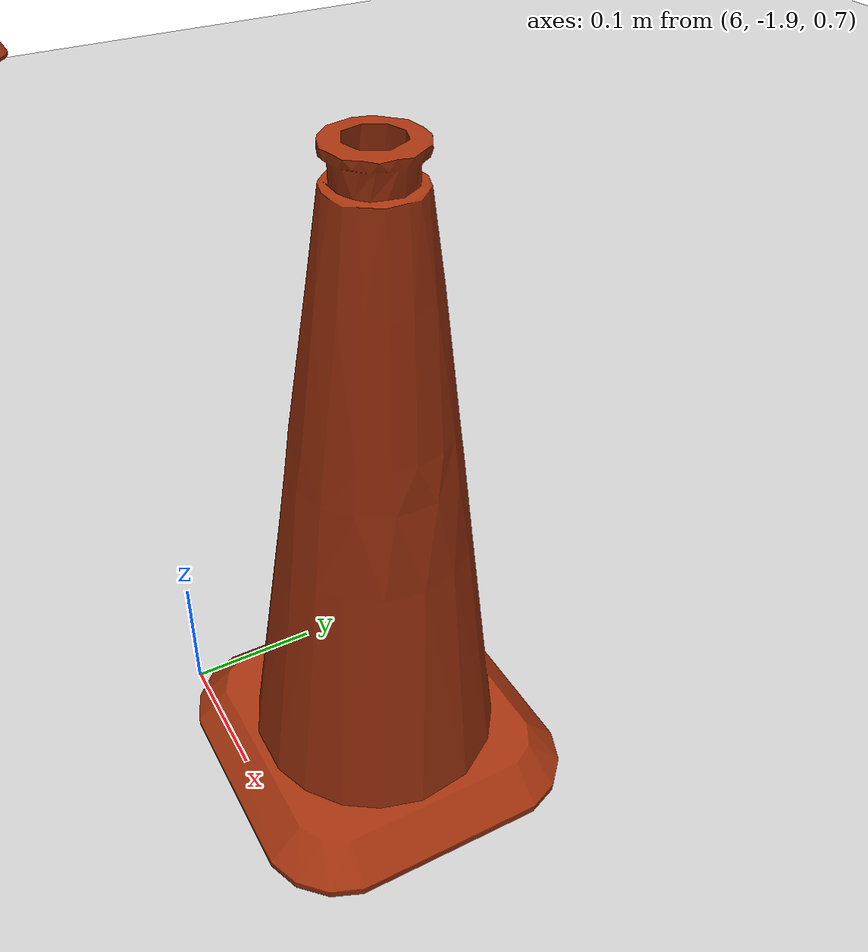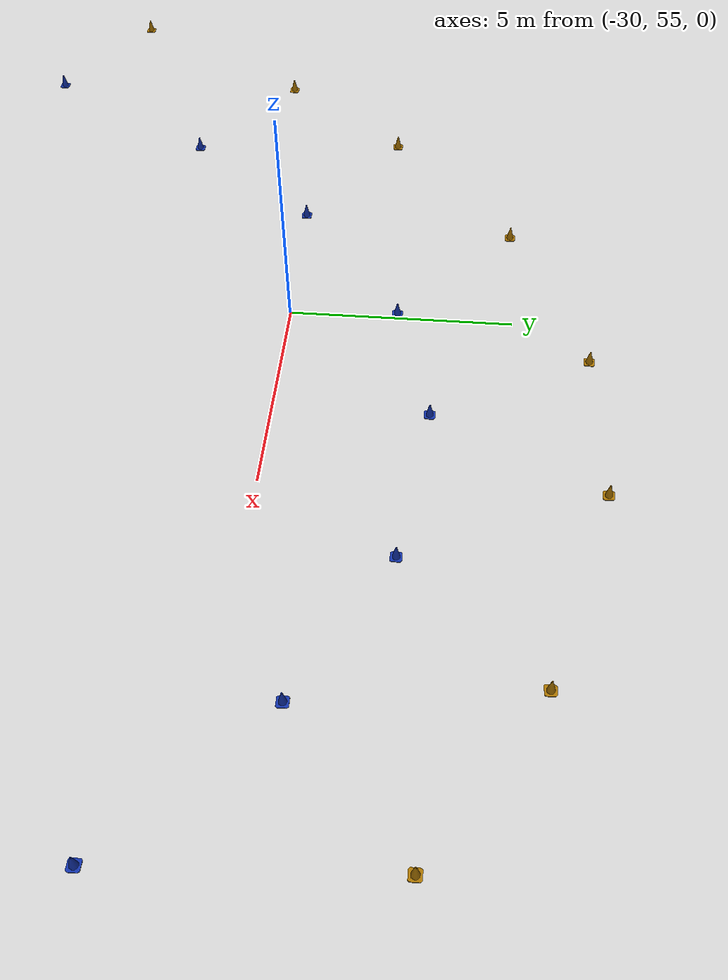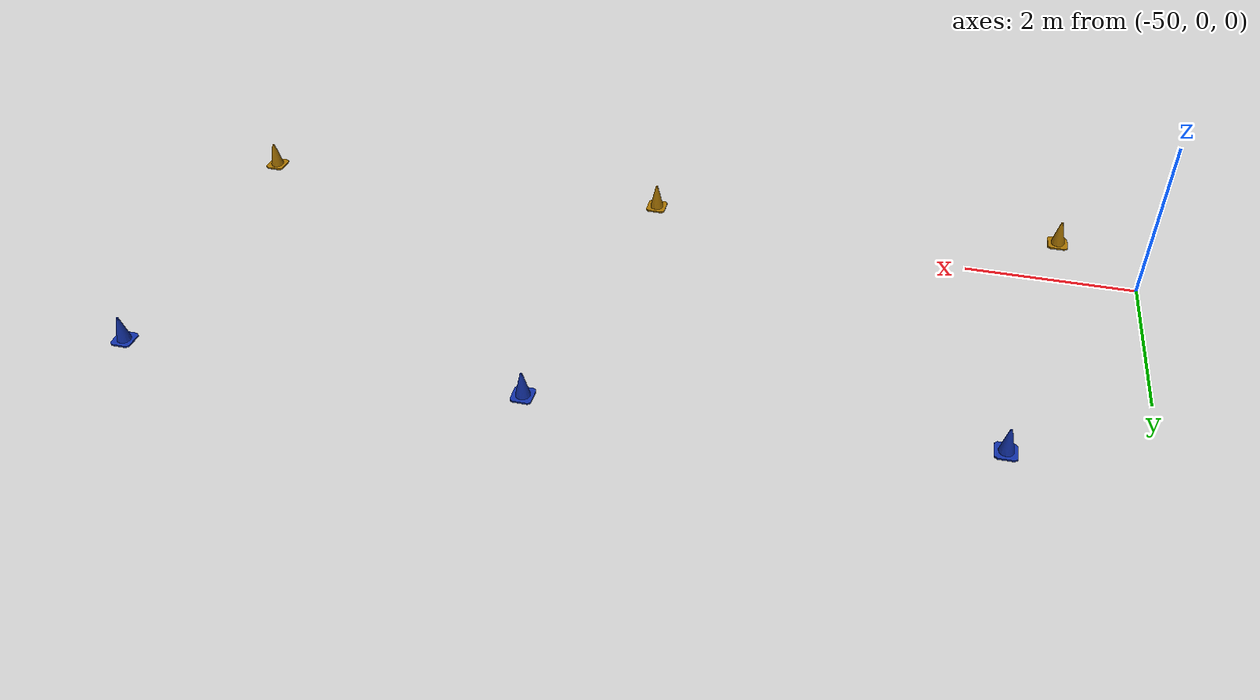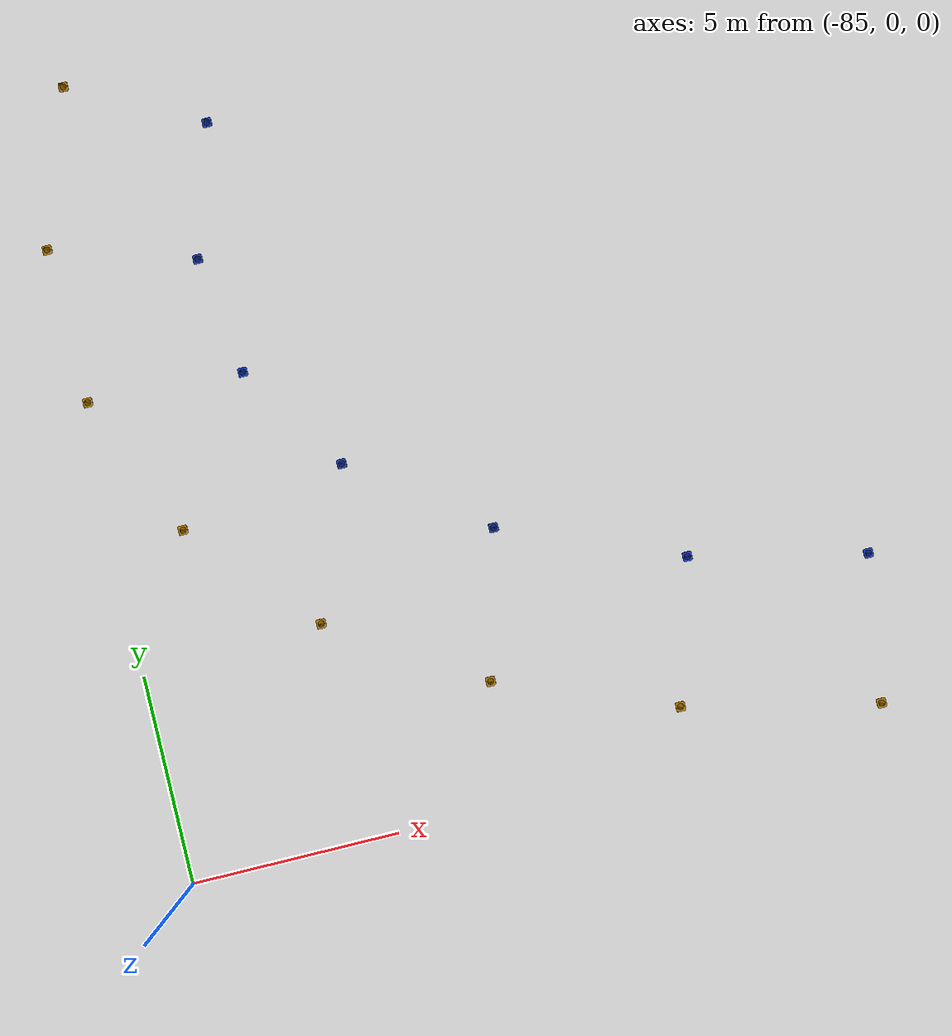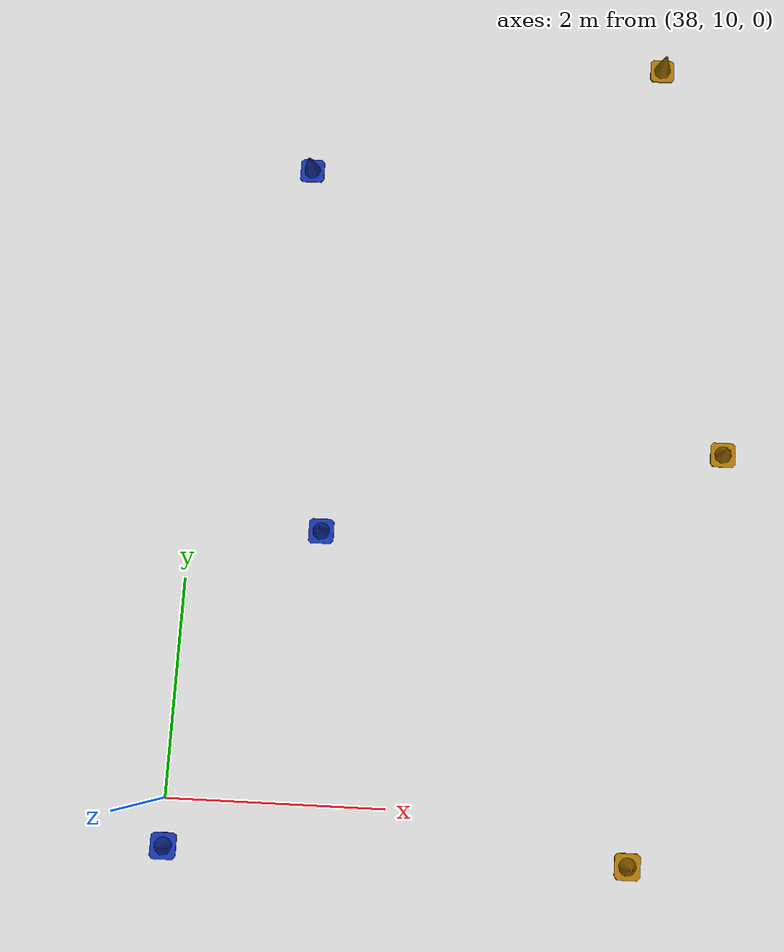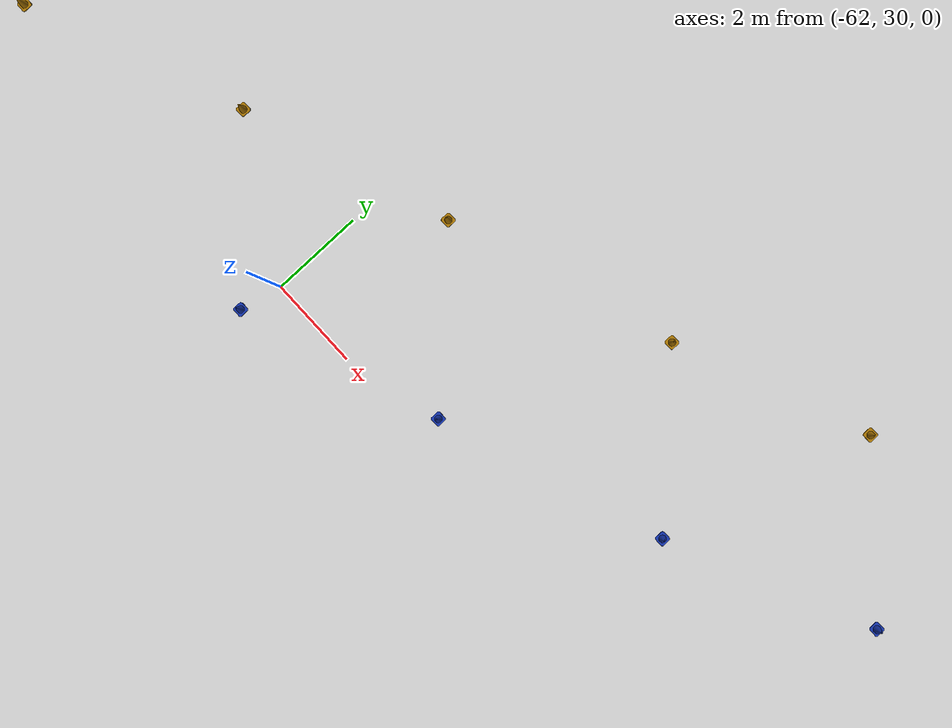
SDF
<sdf version='1.6'>
  <world name='BM_long_straight'>
    <gui fullscreen='0'>
      <camera name='user_camera'>
        <pose frame=''>-40 40 20 0 0.667643 -1</pose>
        <view_controller>orbit</view_controller>
        <projection_type>perspective</projection_type>
      </camera>
    </gui>

    <!-- WORLD SETTINGS -->
    <scene>
      <ambient>1.0 1.0 1.0 1.0</ambient>
      <shadows>false</shadows>
    </scene>

    <spherical_coordinates>
      <heading_deg>180</heading_deg>

      <!-- Appleton Tower coordinates -->
      <latitude_deg>-27.690733</latitude_deg>
      <longitude_deg>152.656715</longitude_deg>
    </spherical_coordinates>

    <light name='sun' type='directional'>
      <cast_shadows>1</cast_shadows>
      <pose frame=''>0 0 10 0 -0 0</pose>
      <diffuse>0.8 0.8 0.8 1</diffuse>
      <specular>0.1 0.1 0.1 1</specular>
      <attenuation>
        <range>1000</range>
        <constant>0.9</constant>
        <linear>0.01</linear>
        <quadratic>0.001</quadratic>
      </attenuation>
      <direction>-0.5 0.5 -1</direction>
    </light>

    <!-- MODELS -->
    <include>
      <uri>model://ground_plane</uri>
      <pose>0.0 0.0 0.0 0 0 0</pose>
    </include>

    <include>
      <uri>model://BM_long_straight</uri>
      <pose>0 0 0.5 0 0 0</pose>
    </include>

  </world>
</sdf>

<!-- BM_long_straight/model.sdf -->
<sdf version='1.6'>
  <model name='track'>

    <include>
      <pose>9.81 1.7 0.15 0 0 0</pose>
      <uri>model://blue_cone</uri>
      <name>blue_cone_0</name>

      <covariance x="0.01" y="0.01" xy="0.0"/>

    </include>

    <include>
      <pose>14.77 1.78 0.15 0 0 0</pose>
      <uri>model://blue_cone</uri>
      <name>blue_cone_1</name>

      <covariance x="0.01" y="0.01" xy="0.0"/>

    </include>

    <include>
      <pose>19.04 2.03 0.15 0 0 0</pose>
      <uri>model://blue_cone</uri>
      <name>blue_cone_2</name>

      <covariance x="0.01" y="0.01" xy="0.0"/>

    </include>

    <include>
      <pose>24.17 2.68 0.15 0 0 0</pose>
      <uri>model://blue_cone</uri>
      <name>blue_cone_3</name>

      <covariance x="0.01" y="0.01" xy="0.0"/>

    </include>

    <include>
      <pose>28.26 3.61 0.15 0 0 0</pose>
      <uri>model://blue_cone</uri>
      <name>blue_cone_4</name>

      <covariance x="0.01" y="0.01" xy="0.0"/>

    </include>

    <include>
      <pose>31.99 4.95 0.15 0 0 0</pose>
      <uri>model://blue_cone</uri>
      <name>blue_cone_5</name>

      <covariance x="0.01" y="0.01" xy="0.0"/>

    </include>

    <include>
      <pose>35.66 7.08 0.15 0 0 0</pose>
      <uri>model://blue_cone</uri>
      <name>blue_cone_6</name>

      <covariance x="0.01" y="0.01" xy="0.0"/>

    </include>

    <include>
      <pose>38.15 9.64 0.15 0 0 0</pose>
      <uri>model://blue_cone</uri>
      <name>blue_cone_7</name>

      <covariance x="0.01" y="0.01" xy="0.0"/>

    </include>

    <include>
      <pose>39.31 12.42 0.15 0 0 0</pose>
      <uri>model://blue_cone</uri>
      <name>blue_cone_8</name>

      <covariance x="0.01" y="0.01" xy="0.0"/>

    </include>

    <include>
      <pose>38.98 15.85 0.15 0 0 0</pose>
      <uri>model://blue_cone</uri>
      <name>blue_cone_9</name>

      <covariance x="0.01" y="0.01" xy="0.0"/>

    </include>

    <include>
      <pose>37.53 18.45 0.15 0 0 0</pose>
      <uri>model://blue_cone</uri>
      <name>blue_cone_10</name>

      <covariance x="0.01" y="0.01" xy="0.0"/>

    </include>

    <include>
      <pose>34.41 21.49 0.15 0 0 0</pose>
      <uri>model://blue_cone</uri>
      <name>blue_cone_11</name>

      <covariance x="0.01" y="0.01" xy="0.0"/>

    </include>

    <include>
      <pose>30.79 23.77 0.15 0 0 0</pose>
      <uri>model://blue_cone</uri>
      <name>blue_cone_12</name>

      <covariance x="0.01" y="0.01" xy="0.0"/>

    </include>

    <include>
      <pose>26.48 25.68 0.15 0 0 0</pose>
      <uri>model://blue_cone</uri>
      <name>blue_cone_13</name>

      <covariance x="0.01" y="0.01" xy="0.0"/>

    </include>

    <include>
      <pose>22.72 26.92 0.15 0 0 0</pose>
      <uri>model://blue_cone</uri>
      <name>blue_cone_14</name>

      <covariance x="0.01" y="0.01" xy="0.0"/>

    </include>

    <include>
      <pose>17.85 28.15 0.15 0 0 0</pose>
      <uri>model://blue_cone</uri>
      <name>blue_cone_15</name>

      <covariance x="0.01" y="0.01" xy="0.0"/>

    </include>

    <include>
      <pose>13.05 29.1 0.15 0 0 0</pose>
      <uri>model://blue_cone</uri>
      <name>blue_cone_16</name>

      <covariance x="0.01" y="0.01" xy="0.0"/>

    </include>

    <include>
      <pose>7.64 30.09 0.15 0 0 0</pose>
      <uri>model://blue_cone</uri>
      <name>blue_cone_17</name>

      <covariance x="0.01" y="0.01" xy="0.0"/>

    </include>

    <include>
      <pose>3.6 31.01 0.15 0 0 0</pose>
      <uri>model://blue_cone</uri>
      <name>blue_cone_18</name>

      <covariance x="0.01" y="0.01" xy="0.0"/>

    </include>

    <include>
      <pose>-0.64 32.53 0.15 0 0 0</pose>
      <uri>model://blue_cone</uri>
      <name>blue_cone_19</name>

      <covariance x="0.01" y="0.01" xy="0.0"/>

    </include>

    <include>
      <pose>-4.17 34.8 0.15 0 0 0</pose>
      <uri>model://blue_cone</uri>
      <name>blue_cone_20</name>

      <covariance x="0.01" y="0.01" xy="0.0"/>

    </include>

    <include>
      <pose>-6.99 37.83 0.15 0 0 0</pose>
      <uri>model://blue_cone</uri>
      <name>blue_cone_21</name>

      <covariance x="0.01" y="0.01" xy="0.0"/>

    </include>

    <include>
      <pose>-9.67 42.09 0.15 0 0 0</pose>
      <uri>model://blue_cone</uri>
      <name>blue_cone_22</name>

      <covariance x="0.01" y="0.01" xy="0.0"/>

    </include>

    <include>
      <pose>-11.85 46.07 0.15 0 0 0</pose>
      <uri>model://blue_cone</uri>
      <name>blue_cone_23</name>

      <covariance x="0.01" y="0.01" xy="0.0"/>

    </include>

    <include>
      <pose>-14.2 50.03 0.15 0 0 0</pose>
      <uri>model://blue_cone</uri>
      <name>blue_cone_24</name>

      <covariance x="0.01" y="0.01" xy="0.0"/>

    </include>

    <include>
      <pose>-16.86 53.57 0.15 0 0 0</pose>
      <uri>model://blue_cone</uri>
      <name>blue_cone_25</name>

      <covariance x="0.01" y="0.01" xy="0.0"/>

    </include>

    <include>
      <pose>-19.81 56.29 0.15 0 0 0</pose>
      <uri>model://blue_cone</uri>
      <name>blue_cone_26</name>

      <covariance x="0.01" y="0.01" xy="0.0"/>

    </include>

    <include>
      <pose>-22.89 57.93 0.15 0 0 0</pose>
      <uri>model://blue_cone</uri>
      <name>blue_cone_27</name>

      <covariance x="0.01" y="0.01" xy="0.0"/>

    </include>

    <include>
      <pose>-26.45 58.34 0.15 0 0 0</pose>
      <uri>model://blue_cone</uri>
      <name>blue_cone_28</name>

      <covariance x="0.01" y="0.01" xy="0.0"/>

    </include>

    <include>
      <pose>-29.41 57.47 0.15 0 0 0</pose>
      <uri>model://blue_cone</uri>
      <name>blue_cone_29</name>

      <covariance x="0.01" y="0.01" xy="0.0"/>

    </include>

    <include>
      <pose>-32.71 55.06 0.15 0 0 0</pose>
      <uri>model://blue_cone</uri>
      <name>blue_cone_30</name>

      <covariance x="0.01" y="0.01" xy="0.0"/>

    </include>

    <include>
      <pose>-35.25 52.02 0.15 0 0 0</pose>
      <uri>model://blue_cone</uri>
      <name>blue_cone_31</name>

      <covariance x="0.01" y="0.01" xy="0.0"/>

    </include>

    <include>
      <pose>-37.84 47.83 0.15 0 0 0</pose>
      <uri>model://blue_cone</uri>
      <name>blue_cone_32</name>

      <covariance x="0.01" y="0.01" xy="0.0"/>

    </include>

    <include>
      <pose>-40.22 43.48 0.15 0 0 0</pose>
      <uri>model://blue_cone</uri>
      <name>blue_cone_33</name>

      <covariance x="0.01" y="0.01" xy="0.0"/>

    </include>

    <include>
      <pose>-42.82 39.44 0.15 0 0 0</pose>
      <uri>model://blue_cone</uri>
      <name>blue_cone_34</name>

      <covariance x="0.01" y="0.01" xy="0.0"/>

    </include>

    <include>
      <pose>-45.59 36.48 0.15 0 0 0</pose>
      <uri>model://blue_cone</uri>
      <name>blue_cone_35</name>

      <covariance x="0.01" y="0.01" xy="0.0"/>

    </include>

    <include>
      <pose>-49.03 34.11 0.15 0 0 0</pose>
      <uri>model://blue_cone</uri>
      <name>blue_cone_36</name>

      <covariance x="0.01" y="0.01" xy="0.0"/>

    </include>

    <include>
      <pose>-53.12 32.25 0.15 0 0 0</pose>
      <uri>model://blue_cone</uri>
      <name>blue_cone_37</name>

      <covariance x="0.01" y="0.01" xy="0.0"/>

    </include>

    <include>
      <pose>-57.79 30.62 0.15 0 0 0</pose>
      <uri>model://blue_cone</uri>
      <name>blue_cone_38</name>

      <covariance x="0.01" y="0.01" xy="0.0"/>

    </include>

    <include>
      <pose>-62.0 29.22 0.15 0 0 0</pose>
      <uri>model://blue_cone</uri>
      <name>blue_cone_39</name>

      <covariance x="0.01" y="0.01" xy="0.0"/>

    </include>

    <include>
      <pose>-67.17 27.29 0.15 0 0 0</pose>
      <uri>model://blue_cone</uri>
      <name>blue_cone_40</name>

      <covariance x="0.01" y="0.01" xy="0.0"/>

    </include>

    <include>
      <pose>-71.31 25.35 0.15 0 0 0</pose>
      <uri>model://blue_cone</uri>
      <name>blue_cone_41</name>

      <covariance x="0.01" y="0.01" xy="0.0"/>

    </include>

    <include>
      <pose>-75.01 23.09 0.15 0 0 0</pose>
      <uri>model://blue_cone</uri>
      <name>blue_cone_42</name>

      <covariance x="0.01" y="0.01" xy="0.0"/>

    </include>

    <include>
      <pose>-78.01 20.56 0.15 0 0 0</pose>
      <uri>model://blue_cone</uri>
      <name>blue_cone_43</name>

      <covariance x="0.01" y="0.01" xy="0.0"/>

    </include>

    <include>
      <pose>-80.4 17.37 0.15 0 0 0</pose>
      <uri>model://blue_cone</uri>
      <name>blue_cone_44</name>

      <covariance x="0.01" y="0.01" xy="0.0"/>

    </include>

    <include>
      <pose>-81.36 14.27 0.15 0 0 0</pose>
      <uri>model://blue_cone</uri>
      <name>blue_cone_45</name>

      <covariance x="0.01" y="0.01" xy="0.0"/>

    </include>

    <include>
      <pose>-80.95 11.42 0.15 0 0 0</pose>
      <uri>model://blue_cone</uri>
      <name>blue_cone_46</name>

      <covariance x="0.01" y="0.01" xy="0.0"/>

    </include>

    <include>
      <pose>-79.2 8.78 0.15 0 0 0</pose>
      <uri>model://blue_cone</uri>
      <name>blue_cone_47</name>

      <covariance x="0.01" y="0.01" xy="0.0"/>

    </include>

    <include>
      <pose>-76.1 6.48 0.15 0 0 0</pose>
      <uri>model://blue_cone</uri>
      <name>blue_cone_48</name>

      <covariance x="0.01" y="0.01" xy="0.0"/>

    </include>

    <include>
      <pose>-71.86 4.75 0.15 0 0 0</pose>
      <uri>model://blue_cone</uri>
      <name>blue_cone_49</name>

      <covariance x="0.01" y="0.01" xy="0.0"/>

    </include>

    <include>
      <pose>-67.73 3.82 0.15 0 0 0</pose>
      <uri>model://blue_cone</uri>
      <name>blue_cone_50</name>

      <covariance x="0.01" y="0.01" xy="0.0"/>

    </include>

    <include>
      <pose>-63.29 3.33 0.15 0 0 0</pose>
      <uri>model://blue_cone</uri>
      <name>blue_cone_51</name>

      <covariance x="0.01" y="0.01" xy="0.0"/>

    </include>

    <include>
      <pose>-58.76 3.21 0.15 0 0 0</pose>
      <uri>model://blue_cone</uri>
      <name>blue_cone_52</name>

      <covariance x="0.01" y="0.01" xy="0.0"/>

    </include>

    <include>
      <pose>-53.43 3.38 0.15 0 0 0</pose>
      <uri>model://blue_cone</uri>
      <name>blue_cone_53</name>

      <covariance x="0.01" y="0.01" xy="0.0"/>

    </include>

    <include>
      <pose>-48.37 3.71 0.15 0 0 0</pose>
      <uri>model://blue_cone</uri>
      <name>blue_cone_54</name>

      <covariance x="0.01" y="0.01" xy="0.0"/>

    </include>

    <include>
      <pose>-43.66 3.99 0.15 0 0 0</pose>
      <uri>model://blue_cone</uri>
      <name>blue_cone_55</name>

      <covariance x="0.01" y="0.01" xy="0.0"/>

    </include>

    <include>
      <pose>-39.3 4.11 0.15 0 0 0</pose>
      <uri>model://blue_cone</uri>
      <name>blue_cone_56</name>

      <covariance x="0.01" y="0.01" xy="0.0"/>

    </include>

    <include>
      <pose>-33.91 3.89 0.15 0 0 0</pose>
      <uri>model://blue_cone</uri>
      <name>blue_cone_57</name>

      <covariance x="0.01" y="0.01" xy="0.0"/>

    </include>

    <include>
      <pose>-29.49 3.4 0.15 0 0 0</pose>
      <uri>model://blue_cone</uri>
      <name>blue_cone_58</name>

      <covariance x="0.01" y="0.01" xy="0.0"/>

    </include>

    <include>
      <pose>-24.61 2.72 0.15 0 0 0</pose>
      <uri>model://blue_cone</uri>
      <name>blue_cone_59</name>

      <covariance x="0.01" y="0.01" xy="0.0"/>

    </include>

    <include>
      <pose>-19.79 2.14 0.15 0 0 0</pose>
      <uri>model://blue_cone</uri>
      <name>blue_cone_60</name>

      <covariance x="0.01" y="0.01" xy="0.0"/>

    </include>

    <include>
      <pose>-14.93 1.79 0.15 0 0 0</pose>
      <uri>model://blue_cone</uri>
      <name>blue_cone_61</name>

      <covariance x="0.01" y="0.01" xy="0.0"/>

    </include>

    <include>
      <pose>-9.96 1.69 0.15 0 0 0</pose>
      <uri>model://blue_cone</uri>
      <name>blue_cone_62</name>

      <covariance x="0.01" y="0.01" xy="0.0"/>

    </include>

    <include>
      <pose>-5.45 1.72 0.15 0 0 0</pose>
      <uri>model://blue_cone</uri>
      <name>blue_cone_63</name>

      <covariance x="0.01" y="0.01" xy="0.0"/>

    </include>

    <include>
      <pose>-0.0 1.75 0.15 0 0 0</pose>
      <uri>model://blue_cone</uri>
      <name>blue_cone_64</name>

      <covariance x="0.01" y="0.01" xy="0.0"/>

    </include>

    <include>
      <pose>9.82 -1.8 0.15 0 0 0</pose>
      <uri>model://yellow_cone</uri>
      <name>yellow_cone_65</name>

      <covariance x="0.01" y="0.01" xy="0.0"/>

    </include>

    <include>
      <pose>14.89 -1.72 0.15 0 0 0</pose>
      <uri>model://yellow_cone</uri>
      <name>yellow_cone_66</name>

      <covariance x="0.01" y="0.01" xy="0.0"/>

    </include>

    <include>
      <pose>19.33 -1.46 0.15 0 0 0</pose>
      <uri>model://yellow_cone</uri>
      <name>yellow_cone_67</name>

      <covariance x="0.01" y="0.01" xy="0.0"/>

    </include>

    <include>
      <pose>23.87 -0.92 0.15 0 0 0</pose>
      <uri>model://yellow_cone</uri>
      <name>yellow_cone_68</name>

      <covariance x="0.01" y="0.01" xy="0.0"/>

    </include>

    <include>
      <pose>28.35 0.01 0.15 0 0 0</pose>
      <uri>model://yellow_cone</uri>
      <name>yellow_cone_69</name>

      <covariance x="0.01" y="0.01" xy="0.0"/>

    </include>

    <include>
      <pose>32.61 1.41 0.15 0 0 0</pose>
      <uri>model://yellow_cone</uri>
      <name>yellow_cone_70</name>

      <covariance x="0.01" y="0.01" xy="0.0"/>

    </include>

    <include>
      <pose>36.43 3.36 0.15 0 0 0</pose>
      <uri>model://yellow_cone</uri>
      <name>yellow_cone_71</name>

      <covariance x="0.01" y="0.01" xy="0.0"/>

    </include>

    <include>
      <pose>40.11 6.46 0.15 0 0 0</pose>
      <uri>model://yellow_cone</uri>
      <name>yellow_cone_72</name>

      <covariance x="0.01" y="0.01" xy="0.0"/>

    </include>

    <include>
      <pose>42.13 9.67 0.15 0 0 0</pose>
      <uri>model://yellow_cone</uri>
      <name>yellow_cone_73</name>

      <covariance x="0.01" y="0.01" xy="0.0"/>

    </include>

    <include>
      <pose>42.9 13.3 0.15 0 0 0</pose>
      <uri>model://yellow_cone</uri>
      <name>yellow_cone_74</name>

      <covariance x="0.01" y="0.01" xy="0.0"/>

    </include>

    <include>
      <pose>42.27 17.04 0.15 0 0 0</pose>
      <uri>model://yellow_cone</uri>
      <name>yellow_cone_75</name>

      <covariance x="0.01" y="0.01" xy="0.0"/>

    </include>

    <include>
      <pose>40.32 20.56 0.15 0 0 0</pose>
      <uri>model://yellow_cone</uri>
      <name>yellow_cone_76</name>

      <covariance x="0.01" y="0.01" xy="0.0"/>

    </include>

    <include>
      <pose>37.25 23.7 0.15 0 0 0</pose>
      <uri>model://yellow_cone</uri>
      <name>yellow_cone_77</name>

      <covariance x="0.01" y="0.01" xy="0.0"/>

    </include>

    <include>
      <pose>34.15 25.89 0.15 0 0 0</pose>
      <uri>model://yellow_cone</uri>
      <name>yellow_cone_78</name>

      <covariance x="0.01" y="0.01" xy="0.0"/>

    </include>

    <include>
      <pose>29.65 28.18 0.15 0 0 0</pose>
      <uri>model://yellow_cone</uri>
      <name>yellow_cone_79</name>

      <covariance x="0.01" y="0.01" xy="0.0"/>

    </include>

    <include>
      <pose>25.72 29.66 0.15 0 0 0</pose>
      <uri>model://yellow_cone</uri>
      <name>yellow_cone_80</name>

      <covariance x="0.01" y="0.01" xy="0.0"/>

    </include>

    <include>
      <pose>20.63 31.1 0.15 0 0 0</pose>
      <uri>model://yellow_cone</uri>
      <name>yellow_cone_81</name>

      <covariance x="0.01" y="0.01" xy="0.0"/>

    </include>

    <include>
      <pose>15.61 32.18 0.15 0 0 0</pose>
      <uri>model://yellow_cone</uri>
      <name>yellow_cone_82</name>

      <covariance x="0.01" y="0.01" xy="0.0"/>

    </include>

    <include>
      <pose>10.9 33.04 0.15 0 0 0</pose>
      <uri>model://yellow_cone</uri>
      <name>yellow_cone_83</name>

      <covariance x="0.01" y="0.01" xy="0.0"/>

    </include>

    <include>
      <pose>5.96 34.02 0.15 0 0 0</pose>
      <uri>model://yellow_cone</uri>
      <name>yellow_cone_84</name>

      <covariance x="0.01" y="0.01" xy="0.0"/>

    </include>

    <include>
      <pose>1.98 35.21 0.15 0 0 0</pose>
      <uri>model://yellow_cone</uri>
      <name>yellow_cone_85</name>

      <covariance x="0.01" y="0.01" xy="0.0"/>

    </include>

    <include>
      <pose>-1.49 37.13 0.15 0 0 0</pose>
      <uri>model://yellow_cone</uri>
      <name>yellow_cone_86</name>

      <covariance x="0.01" y="0.01" xy="0.0"/>

    </include>

    <include>
      <pose>-4.18 39.93 0.15 0 0 0</pose>
      <uri>model://yellow_cone</uri>
      <name>yellow_cone_87</name>

      <covariance x="0.01" y="0.01" xy="0.0"/>

    </include>

    <include>
      <pose>-6.61 43.8 0.15 0 0 0</pose>
      <uri>model://yellow_cone</uri>
      <name>yellow_cone_88</name>

      <covariance x="0.01" y="0.01" xy="0.0"/>

    </include>

    <include>
      <pose>-8.79 47.77 0.15 0 0 0</pose>
      <uri>model://yellow_cone</uri>
      <name>yellow_cone_89</name>

      <covariance x="0.01" y="0.01" xy="0.0"/>

    </include>

    <include>
      <pose>-11.28 51.95 0.15 0 0 0</pose>
      <uri>model://yellow_cone</uri>
      <name>yellow_cone_90</name>

      <covariance x="0.01" y="0.01" xy="0.0"/>

    </include>

    <include>
      <pose>-14.24 55.89 0.15 0 0 0</pose>
      <uri>model://yellow_cone</uri>
      <name>yellow_cone_91</name>

      <covariance x="0.01" y="0.01" xy="0.0"/>

    </include>

    <include>
      <pose>-17.13 58.65 0.15 0 0 0</pose>
      <uri>model://yellow_cone</uri>
      <name>yellow_cone_92</name>

      <covariance x="0.01" y="0.01" xy="0.0"/>

    </include>

    <include>
      <pose>-20.38 60.69 0.15 0 0 0</pose>
      <uri>model://yellow_cone</uri>
      <name>yellow_cone_93</name>

      <covariance x="0.01" y="0.01" xy="0.0"/>

    </include>

    <include>
      <pose>-24.64 61.84 0.15 0 0 0</pose>
      <uri>model://yellow_cone</uri>
      <name>yellow_cone_94</name>

      <covariance x="0.01" y="0.01" xy="0.0"/>

    </include>

    <include>
      <pose>-28.23 61.59 0.15 0 0 0</pose>
      <uri>model://yellow_cone</uri>
      <name>yellow_cone_95</name>

      <covariance x="0.01" y="0.01" xy="0.0"/>

    </include>

    <include>
      <pose>-32.24 59.89 0.15 0 0 0</pose>
      <uri>model://yellow_cone</uri>
      <name>yellow_cone_96</name>

      <covariance x="0.01" y="0.01" xy="0.0"/>

    </include>

    <include>
      <pose>-35.69 57.02 0.15 0 0 0</pose>
      <uri>model://yellow_cone</uri>
      <name>yellow_cone_97</name>

      <covariance x="0.01" y="0.01" xy="0.0"/>

    </include>

    <include>
      <pose>-38.11 54.05 0.15 0 0 0</pose>
      <uri>model://yellow_cone</uri>
      <name>yellow_cone_98</name>

      <covariance x="0.01" y="0.01" xy="0.0"/>

    </include>

    <include>
      <pose>-40.9 49.53 0.15 0 0 0</pose>
      <uri>model://yellow_cone</uri>
      <name>yellow_cone_99</name>

      <covariance x="0.01" y="0.01" xy="0.0"/>

    </include>

    <include>
      <pose>-43.27 45.2 0.15 0 0 0</pose>
      <uri>model://yellow_cone</uri>
      <name>yellow_cone_100</name>

      <covariance x="0.01" y="0.01" xy="0.0"/>

    </include>

    <include>
      <pose>-45.6 41.56 0.15 0 0 0</pose>
      <uri>model://yellow_cone</uri>
      <name>yellow_cone_101</name>

      <covariance x="0.01" y="0.01" xy="0.0"/>

    </include>

    <include>
      <pose>-48.3 38.77 0.15 0 0 0</pose>
      <uri>model://yellow_cone</uri>
      <name>yellow_cone_102</name>

      <covariance x="0.01" y="0.01" xy="0.0"/>

    </include>

    <include>
      <pose>-51.84 36.6 0.15 0 0 0</pose>
      <uri>model://yellow_cone</uri>
      <name>yellow_cone_103</name>

      <covariance x="0.01" y="0.01" xy="0.0"/>

    </include>

    <include>
      <pose>-55.79 34.99 0.15 0 0 0</pose>
      <uri>model://yellow_cone</uri>
      <name>yellow_cone_104</name>

      <covariance x="0.01" y="0.01" xy="0.0"/>

    </include>

    <include>
      <pose>-60.54 33.4 0.15 0 0 0</pose>
      <uri>model://yellow_cone</uri>
      <name>yellow_cone_105</name>

      <covariance x="0.01" y="0.01" xy="0.0"/>

    </include>

    <include>
      <pose>-64.91 31.91 0.15 0 0 0</pose>
      <uri>model://yellow_cone</uri>
      <name>yellow_cone_106</name>

      <covariance x="0.01" y="0.01" xy="0.0"/>

    </include>

    <include>
      <pose>-69.42 30.13 0.15 0 0 0</pose>
      <uri>model://yellow_cone</uri>
      <name>yellow_cone_107</name>

      <covariance x="0.01" y="0.01" xy="0.0"/>

    </include>

    <include>
      <pose>-73.8 27.97 0.15 0 0 0</pose>
      <uri>model://yellow_cone</uri>
      <name>yellow_cone_108</name>

      <covariance x="0.01" y="0.01" xy="0.0"/>

    </include>

    <include>
      <pose>-77.79 25.39 0.15 0 0 0</pose>
      <uri>model://yellow_cone</uri>
      <name>yellow_cone_109</name>

      <covariance x="0.01" y="0.01" xy="0.0"/>

    </include>

    <include>
      <pose>-81.1 22.38 0.15 0 0 0</pose>
      <uri>model://yellow_cone</uri>
      <name>yellow_cone_110</name>

      <covariance x="0.01" y="0.01" xy="0.0"/>

    </include>

    <include>
      <pose>-83.5 19.0 0.15 0 0 0</pose>
      <uri>model://yellow_cone</uri>
      <name>yellow_cone_111</name>

      <covariance x="0.01" y="0.01" xy="0.0"/>

    </include>

    <include>
      <pose>-84.75 15.32 0.15 0 0 0</pose>
      <uri>model://yellow_cone</uri>
      <name>yellow_cone_112</name>

      <covariance x="0.01" y="0.01" xy="0.0"/>

    </include>

    <include>
      <pose>-84.65 11.59 0.15 0 0 0</pose>
      <uri>model://yellow_cone</uri>
      <name>yellow_cone_113</name>

      <covariance x="0.01" y="0.01" xy="0.0"/>

    </include>

    <include>
      <pose>-83.17 8.15 0.15 0 0 0</pose>
      <uri>model://yellow_cone</uri>
      <name>yellow_cone_114</name>

      <covariance x="0.01" y="0.01" xy="0.0"/>

    </include>

    <include>
      <pose>-80.54 5.26 0.15 0 0 0</pose>
      <uri>model://yellow_cone</uri>
      <name>yellow_cone_115</name>

      <covariance x="0.01" y="0.01" xy="0.0"/>

    </include>

    <include>
      <pose>-77.02 3.02 0.15 0 0 0</pose>
      <uri>model://yellow_cone</uri>
      <name>yellow_cone_116</name>

      <covariance x="0.01" y="0.01" xy="0.0"/>

    </include>

    <include>
      <pose>-72.86 1.4 0.15 0 0 0</pose>
      <uri>model://yellow_cone</uri>
      <name>yellow_cone_117</name>

      <covariance x="0.01" y="0.01" xy="0.0"/>

    </include>

    <include>
      <pose>-68.29 0.37 0.15 0 0 0</pose>
      <uri>model://yellow_cone</uri>
      <name>yellow_cone_118</name>

      <covariance x="0.01" y="0.01" xy="0.0"/>

    </include>

    <include>
      <pose>-63.52 -0.16 0.15 0 0 0</pose>
      <uri>model://yellow_cone</uri>
      <name>yellow_cone_119</name>

      <covariance x="0.01" y="0.01" xy="0.0"/>

    </include>

    <include>
      <pose>-58.75 -0.29 0.15 0 0 0</pose>
      <uri>model://yellow_cone</uri>
      <name>yellow_cone_120</name>

      <covariance x="0.01" y="0.01" xy="0.0"/>

    </include>

    <include>
      <pose>-54.13 -0.16 0.15 0 0 0</pose>
      <uri>model://yellow_cone</uri>
      <name>yellow_cone_121</name>

      <covariance x="0.01" y="0.01" xy="0.0"/>

    </include>

    <include>
      <pose>-48.95 0.16 0.15 0 0 0</pose>
      <uri>model://yellow_cone</uri>
      <name>yellow_cone_122</name>

      <covariance x="0.01" y="0.01" xy="0.0"/>

    </include>

    <include>
      <pose>-44.23 0.46 0.15 0 0 0</pose>
      <uri>model://yellow_cone</uri>
      <name>yellow_cone_123</name>

      <covariance x="0.01" y="0.01" xy="0.0"/>

    </include>

    <include>
      <pose>-39.3 0.61 0.15 0 0 0</pose>
      <uri>model://yellow_cone</uri>
      <name>yellow_cone_124</name>

      <covariance x="0.01" y="0.01" xy="0.0"/>

    </include>

    <include>
      <pose>-34.19 0.4 0.15 0 0 0</pose>
      <uri>model://yellow_cone</uri>
      <name>yellow_cone_125</name>

      <covariance x="0.01" y="0.01" xy="0.0"/>

    </include>

    <include>
      <pose>-29.34 -0.15 0.15 0 0 0</pose>
      <uri>model://yellow_cone</uri>
      <name>yellow_cone_126</name>

      <covariance x="0.01" y="0.01" xy="0.0"/>

    </include>

    <include>
      <pose>-24.48 -0.83 0.15 0 0 0</pose>
      <uri>model://yellow_cone</uri>
      <name>yellow_cone_127</name>

      <covariance x="0.01" y="0.01" xy="0.0"/>

    </include>

    <include>
      <pose>-20.14 -1.34 0.15 0 0 0</pose>
      <uri>model://yellow_cone</uri>
      <name>yellow_cone_128</name>

      <covariance x="0.01" y="0.01" xy="0.0"/>

    </include>

    <include>
      <pose>-15.08 -1.7 0.15 0 0 0</pose>
      <uri>model://yellow_cone</uri>
      <name>yellow_cone_129</name>

      <covariance x="0.01" y="0.01" xy="0.0"/>

    </include>

    <include>
      <pose>-9.97 -1.81 0.15 0 0 0</pose>
      <uri>model://yellow_cone</uri>
      <name>yellow_cone_130</name>

      <covariance x="0.01" y="0.01" xy="0.0"/>

    </include>

    <include>
      <pose>-5.42 -1.78 0.15 0 0 0</pose>
      <uri>model://yellow_cone</uri>
      <name>yellow_cone_131</name>

      <covariance x="0.01" y="0.01" xy="0.0"/>

    </include>

    <include>
      <pose>0.0 -1.75 0.15 0 0 0</pose>
      <uri>model://yellow_cone</uri>
      <name>yellow_cone_132</name>

      <covariance x="0.01" y="0.01" xy="0.0"/>

    </include>

    <include>
      <pose>6.12 1.72 0.15 0 0 0</pose>
      <uri>model://big_cone</uri>
      <name>big_cone_133</name>

      <covariance x="0.01" y="0.01" xy="0.0"/>

    </include>

    <include>
      <pose>6.09 -1.78 0.15 0 0 0</pose>
      <uri>model://big_cone</uri>
      <name>big_cone_134</name>

      <covariance x="0.01" y="0.01" xy="0.0"/>

    </include>

    <include>
      <pose>4.12 1.73 0.15 0 0 0</pose>
      <uri>model://big_cone</uri>
      <name>big_cone_135</name>

      <covariance x="0.01" y="0.01" xy="0.0"/>

    </include>

    <include>
      <pose>4.09 -1.77 0.15 0 0 0</pose>
      <uri>model://big_cone</uri>
      <name>big_cone_136</name>

      <covariance x="0.01" y="0.01" xy="0.0"/>

    </include>

    <static>0</static>
    <allow_auto_disable>1</allow_auto_disable>
  </model>
</sdf>

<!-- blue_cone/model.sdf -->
<sdf version='1.6'>
  <model name='blue_cone'>
    <link name='link'>
      <pose frame=''>0 0 0 0 0 0</pose>
      <inertial>
        <inertia>
          <ixx>0.0016</ixx>
          <ixy>0</ixy>
          <ixz>0</ixz>
          <iyy>0.0016</iyy>
          <iyz>0</iyz>
          <izz>0.0010</izz>
        </inertia>
        <mass>0.45</mass>
      </inertial>
      <visual name='visual'>
        <geometry>
          <mesh>
            <uri>model://cone_blue.dae</uri>
          </mesh>
        </geometry>
        <cast_shadows>1</cast_shadows>
      </visual>
      <collision name='collision'>
        <max_contacts>3</max_contacts>
        <geometry>
          <mesh>
            <uri>model://cone_blue.dae</uri>
          </mesh>
        </geometry>
      </collision>
    </link>
  </model>
</sdf>

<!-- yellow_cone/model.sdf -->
<sdf version='1.6'>
  <model name='yellow_cone'>
    <link name='link'>
      <pose frame=''>0 0 0 0 0 0</pose>
      <inertial>
        <inertia>
          <ixx>0.0016</ixx>
          <ixy>0</ixy>
          <ixz>0</ixz>
          <iyy>0.0016</iyy>
          <iyz>0</iyz>
          <izz>0.0010</izz>
        </inertia>
        <mass>0.45</mass>
      </inertial>
      <visual name='visual'>
        <geometry>
          <mesh>
            <uri>model://cone_yellow.dae</uri>
          </mesh>
        </geometry>
        <cast_shadows>1</cast_shadows>
      </visual>
      <collision name='collision'>
        <max_contacts>3</max_contacts>
        <geometry>
          <mesh>
            <uri>model://cone_yellow.dae</uri>
          </mesh>
        </geometry>
      </collision>
    </link>
  </model>
</sdf>

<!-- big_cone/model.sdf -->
<sdf version='1.6'>
  <model name='big_cone'>
    <link name='link'>
      <pose frame=''>0 0 0 0 0 0</pose>
      <inertial>
        <inertia>
          <ixx>0.0016</ixx>
          <ixy>0</ixy>
          <ixz>0</ixz>
          <iyy>0.0016</iyy>
          <iyz>0</iyz>
          <izz>0.0010</izz>
        </inertia>
        <mass>0.45</mass>
      </inertial>
      <visual name='visual'>
        <geometry>
          <mesh>
            <uri>model://cone_big.dae</uri>
          </mesh>
        </geometry>
        <cast_shadows>1</cast_shadows>
      </visual>
      <collision name='collision'>
        <max_contacts>3</max_contacts>
        <geometry>
          <mesh>
            <uri>model://cone_big.dae</uri>
          </mesh>
        </geometry>
      </collision>
    </link>
  </model>
</sdf>
